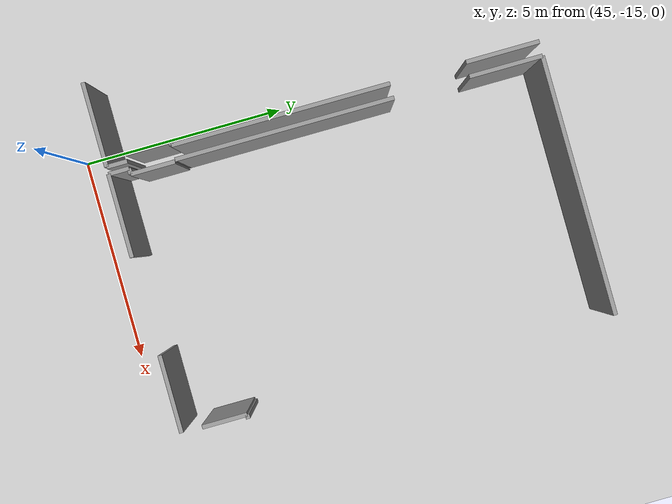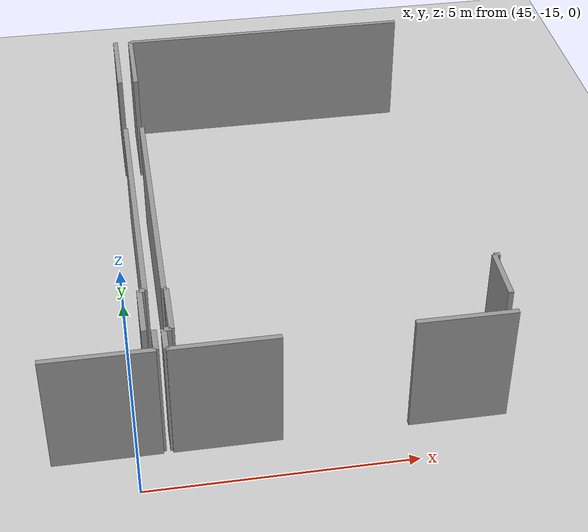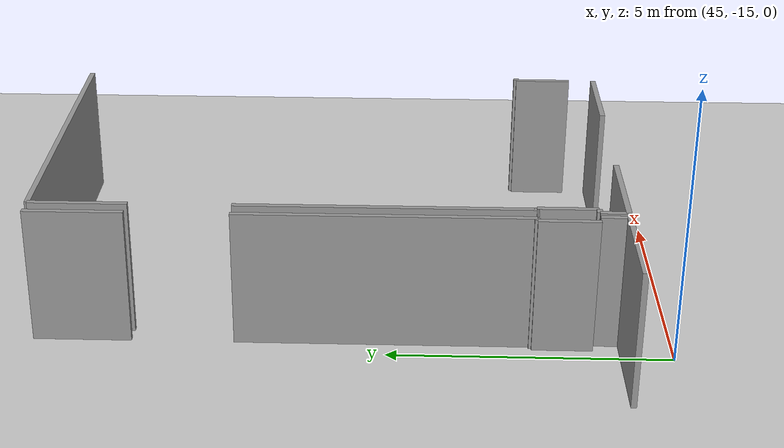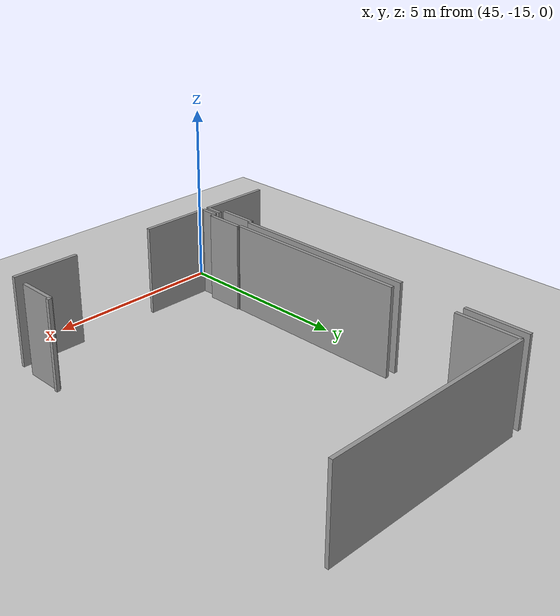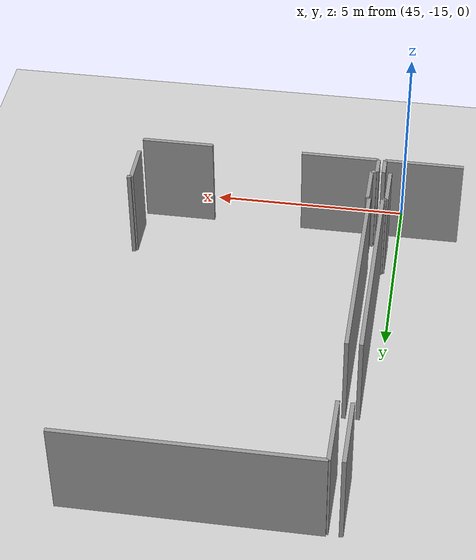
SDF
<sdf version="1.6">
 <world name="default">
  <model name="ground_plane">
   <static>1</static>
   <link name="link">
    <collision name="collision">
     <geometry><plane><normal>0 0 1</normal><size>100 100</size></plane></geometry>
     <surface><friction><ode><mu>100</mu><mu2>50</mu2></ode></friction></surface>
    </collision>
    <visual name="visual">
     <cast_shadows>0</cast_shadows>
     <geometry><plane><normal>0 0 1</normal><size>100 100</size></plane></geometry>
     <material>
      <script><uri>file://media/materials/scripts/gazebo.material</uri><name>Gazebo/Grey</name></script>
     </material>
    </visual>
   </link>
  </model>
  <model name="0510040942_A-40">
   <static>1</static>
   <link name="Wall_276">
    <collision name="Wall_276_Collision">
     <geometry><box><size>1.74568938173 0.1 2.5</size></box></geometry>
     <pose>0.872844690866 0 1.25 0 0 0</pose>
    </collision>
    <visual name="Wall_276_Visual">
     <pose>0.872844690866 0 1.25 0 0 0</pose>
     <geometry><box><size>1.74568938173 0.1 2.5</size></box></geometry>
     <material>
      <script><uri>file://media/materials/scripts/gazebo.material</uri><name>Gazebo/Grey</name></script>
      <ambient>1 1 1 1</ambient>
     </material>
    </visual>
    <pose>104.050648972 -16.3523097809 0 0 0 -1.57079632679</pose>
   </link>
   <link name="Wall_277">
    <collision name="Wall_277_Collision">
     <geometry><box><size>5.21346917543 0.1 2.5</size></box></geometry>
     <pose>2.60673458772 0 1.25 0 0 0</pose>
    </collision>
    <visual name="Wall_277_Visual">
     <pose>2.60673458772 0 1.25 0 0 0</pose>
     <geometry><box><size>5.21346917543 0.1 2.5</size></box></geometry>
     <material>
      <script><uri>file://media/materials/scripts/gazebo.material</uri><name>Gazebo/Grey</name></script>
      <ambient>1 1 1 1</ambient>
     </material>
    </visual>
    <pose>104.050648972 -19.9080147684 0 0 0 -1.57079632679</pose>
   </link>
   <link name="Wall_278">
    <collision name="Wall_278_Collision">
     <geometry><box><size>0.0955377646954 0.1 2.5</size></box></geometry>
     <pose>0.0477688823477 0 1.25 0 0 0</pose>
    </collision>
    <visual name="Wall_278_Visual">
     <pose>0.0477688823477 0 1.25 0 0 0</pose>
     <geometry><box><size>0.0955377646954 0.1 2.5</size></box></geometry>
     <material>
      <script><uri>file://media/materials/scripts/gazebo.material</uri><name>Gazebo/Grey</name></script>
      <ambient>1 1 1 1</ambient>
     </material>
    </visual>
    <pose>104.050648972 -25.1214839438 0 0 0 3.14159265359</pose>
   </link>
   <link name="Wall_279">
    <collision name="Wall_279_Collision">
     <geometry><box><size>1.0712156007 0.1 2.5</size></box></geometry>
     <pose>0.535607800348 0 1.25 0 0 0</pose>
    </collision>
    <visual name="Wall_279_Visual">
     <pose>0.535607800348 0 1.25 0 0 0</pose>
     <geometry><box><size>1.0712156007 0.1 2.5</size></box></geometry>
     <material>
      <script><uri>file://media/materials/scripts/gazebo.material</uri><name>Gazebo/Grey</name></script>
      <ambient>1 1 1 1</ambient>
     </material>
    </visual>
    <pose>103.955111207 -25.1214839438 0 0 0 -1.57079632679</pose>
   </link>
   <link name="Wall_281">
    <collision name="Wall_281_Collision">
     <geometry><box><size>0.493675222351 0.1 2.5</size></box></geometry>
     <pose>0.246837611175 0 1.25 0 0 0</pose>
    </collision>
    <visual name="Wall_281_Visual">
     <pose>0.246837611175 0 1.25 0 0 0</pose>
     <geometry><box><size>0.493675222351 0.1 2.5</size></box></geometry>
     <material>
      <script><uri>file://media/materials/scripts/gazebo.material</uri><name>Gazebo/Grey</name></script>
      <ambient>1 1 1 1</ambient>
     </material>
    </visual>
    <pose>104.126267176 -26.1926995445 0 0 0 -1.57079632679</pose>
   </link>
   <link name="Wall_282">
    <collision name="Wall_282_Collision">
     <geometry><box><size>2.01238311532 0.1 2.5</size></box></geometry>
     <pose>1.00619155766 0 1.25 0 0 0</pose>
    </collision>
    <visual name="Wall_282_Visual">
     <pose>1.00619155766 0 1.25 0 0 0</pose>
     <geometry><box><size>2.01238311532 0.1 2.5</size></box></geometry>
     <material>
      <script><uri>file://media/materials/scripts/gazebo.material</uri><name>Gazebo/Grey</name></script>
      <ambient>1 1 1 1</ambient>
     </material>
    </visual>
    <pose>104.126267176 -26.6863747669 0 0 0 3.14159265359</pose>
   </link>
   <link name="Wall_288">
    <collision name="Wall_288_Collision">
     <geometry><box><size>5.22285801287 0.1 2.5</size></box></geometry>
     <pose>2.61142900643 0 1.25 0 0 0</pose>
    </collision>
    <visual name="Wall_288_Visual">
     <pose>2.61142900643 0 1.25 0 0 0</pose>
     <geometry><box><size>5.22285801287 0.1 2.5</size></box></geometry>
     <material>
      <script><uri>file://media/materials/scripts/gazebo.material</uri><name>Gazebo/Grey</name></script>
      <ambient>1 1 1 1</ambient>
     </material>
    </visual>
    <pose>104.3892815 -25.1311265336 0 0 0 1.57079632679</pose>
   </link>
   <link name="Wall_289">
    <collision name="Wall_289_Collision">
     <geometry><box><size>1.74010682974 0.1 2.5</size></box></geometry>
     <pose>0.870053414872 0 1.25 0 0 0</pose>
    </collision>
    <visual name="Wall_289_Visual">
     <pose>0.870053414872 0 1.25 0 0 0</pose>
     <geometry><box><size>1.74010682974 0.1 2.5</size></box></geometry>
     <material>
      <script><uri>file://media/materials/scripts/gazebo.material</uri><name>Gazebo/Grey</name></script>
      <ambient>1 1 1 1</ambient>
     </material>
    </visual>
    <pose>104.3892815 -18.1138586853 0 0 0 1.57079632679</pose>
   </link>
   <link name="Wall_290">
    <collision name="Wall_290_Collision">
     <geometry><box><size>6.17658626946 0.1 2.5</size></box></geometry>
     <pose>3.08829313473 0 1.25 0 0 0</pose>
    </collision>
    <visual name="Wall_290_Visual">
     <pose>3.08829313473 0 1.25 0 0 0</pose>
     <geometry><box><size>6.17658626946 0.1 2.5</size></box></geometry>
     <material>
      <script><uri>file://media/materials/scripts/gazebo.material</uri><name>Gazebo/Grey</name></script>
      <ambient>1 1 1 1</ambient>
     </material>
    </visual>
    <pose>104.3892815 -16.3737518556 0 0 0 0.0</pose>
   </link>
   <link name="Wall_292">
    <collision name="Wall_292_Collision">
     <geometry><box><size>0.102008449954 0.1 2.5</size></box></geometry>
     <pose>0.0510042249768 0 1.25 0 0 0</pose>
    </collision>
    <visual name="Wall_292_Visual">
     <pose>0.0510042249768 0 1.25 0 0 0</pose>
     <geometry><box><size>0.102008449954 0.1 2.5</size></box></geometry>
     <material>
      <script><uri>file://media/materials/scripts/gazebo.material</uri><name>Gazebo/Grey</name></script>
      <ambient>1 1 1 1</ambient>
     </material>
    </visual>
    <pose>110.56586777 -25.1247827245 0 0 0 3.14159265359</pose>
   </link>
   <link name="Wall_293">
    <collision name="Wall_293_Collision">
     <geometry><box><size>1.07235748633 0.1 2.5</size></box></geometry>
     <pose>0.536178743165 0 1.25 0 0 0</pose>
    </collision>
    <visual name="Wall_293_Visual">
     <pose>0.536178743165 0 1.25 0 0 0</pose>
     <geometry><box><size>1.07235748633 0.1 2.5</size></box></geometry>
     <material>
      <script><uri>file://media/materials/scripts/gazebo.material</uri><name>Gazebo/Grey</name></script>
      <ambient>1 1 1 1</ambient>
     </material>
    </visual>
    <pose>110.46385932 -25.1247827245 0 0 0 -1.57079632679</pose>
   </link>
   <link name="Wall_294">
    <collision name="Wall_294_Collision">
     <geometry><box><size>1.84820533641 0.1 2.5</size></box></geometry>
     <pose>0.924102668206 0 1.25 0 0 0</pose>
    </collision>
    <visual name="Wall_294_Visual">
     <pose>0.924102668206 0 1.25 0 0 0</pose>
     <geometry><box><size>1.84820533641 0.1 2.5</size></box></geometry>
     <material>
      <script><uri>file://media/materials/scripts/gazebo.material</uri><name>Gazebo/Grey</name></script>
      <ambient>1 1 1 1</ambient>
     </material>
    </visual>
    <pose>110.46385932 -26.6891660429 0 0 0 3.14159265359</pose>
   </link>
   <link name="Wall_295">
    <collision name="Wall_295_Collision">
     <geometry><box><size>1.9857391172 0.1 2.5</size></box></geometry>
     <pose>0.992869558598 0 1.25 0 0 0</pose>
    </collision>
    <visual name="Wall_295_Visual">
     <pose>0.992869558598 0 1.25 0 0 0</pose>
     <geometry><box><size>1.9857391172 0.1 2.5</size></box></geometry>
     <material>
      <script><uri>file://media/materials/scripts/gazebo.material</uri><name>Gazebo/Grey</name></script>
      <ambient>1 1 1 1</ambient>
     </material>
    </visual>
    <pose>106.282020376 -26.6891660429 0 0 0 3.14159265359</pose>
   </link>
   <link name="Wall_296">
    <collision name="Wall_296_Collision">
     <geometry><box><size>0.490883946357 0.1 2.5</size></box></geometry>
     <pose>0.245441973178 0 1.25 0 0 0</pose>
    </collision>
    <visual name="Wall_296_Visual">
     <pose>0.245441973178 0 1.25 0 0 0</pose>
     <geometry><box><size>0.490883946357 0.1 2.5</size></box></geometry>
     <material>
      <script><uri>file://media/materials/scripts/gazebo.material</uri><name>Gazebo/Grey</name></script>
      <ambient>1 1 1 1</ambient>
     </material>
    </visual>
    <pose>104.296281259 -26.6891660429 0 0 0 1.57079632679</pose>
   </link>
   <link name="Wall_297">
    <collision name="Wall_297_Collision">
     <geometry><box><size>0.137153152239 0.1 2.5</size></box></geometry>
     <pose>0.0685765761194 0 1.25 0 0 0</pose>
    </collision>
    <visual name="Wall_297_Visual">
     <pose>0.0685765761194 0 1.25 0 0 0</pose>
     <geometry><box><size>0.137153152239 0.1 2.5</size></box></geometry>
     <material>
      <script><uri>file://media/materials/scripts/gazebo.material</uri><name>Gazebo/Grey</name></script>
      <ambient>1 1 1 1</ambient>
     </material>
    </visual>
    <pose>104.296281259 -26.1982820965 0 0 0 0.0</pose>
   </link>
   <link name="Wall_298">
    <collision name="Wall_298_Collision">
     <geometry><box><size>1.05827423018 0.1 2.5</size></box></geometry>
     <pose>0.529137115089 0 1.25 0 0 0</pose>
    </collision>
    <visual name="Wall_298_Visual">
     <pose>0.529137115089 0 1.25 0 0 0</pose>
     <geometry><box><size>1.05827423018 0.1 2.5</size></box></geometry>
     <material>
      <script><uri>file://media/materials/scripts/gazebo.material</uri><name>Gazebo/Grey</name></script>
      <ambient>1 1 1 1</ambient>
     </material>
    </visual>
    <pose>104.433434411 -26.1982820965 0 0 0 1.57079632679</pose>
   </link>
   <link name="Wall_299">
    <collision name="Wall_299_Collision">
     <geometry><box><size>0.0450372916126 0.1 2.5</size></box></geometry>
     <pose>0.0225186458063 0 1.25 0 0 0</pose>
    </collision>
    <visual name="Wall_299_Visual">
     <pose>0.0225186458063 0 1.25 0 0 0</pose>
     <geometry><box><size>0.0450372916126 0.1 2.5</size></box></geometry>
     <material>
      <script><uri>file://media/materials/scripts/gazebo.material</uri><name>Gazebo/Grey</name></script>
      <ambient>1 1 1 1</ambient>
     </material>
    </visual>
    <pose>104.433434411 -25.1400078663 0 0 0 2.94309212181</pose>
   </link>
   <pose>-58.65 12.576975145 0 0 0 0</pose>
  </model>
 </world>
</sdf>
